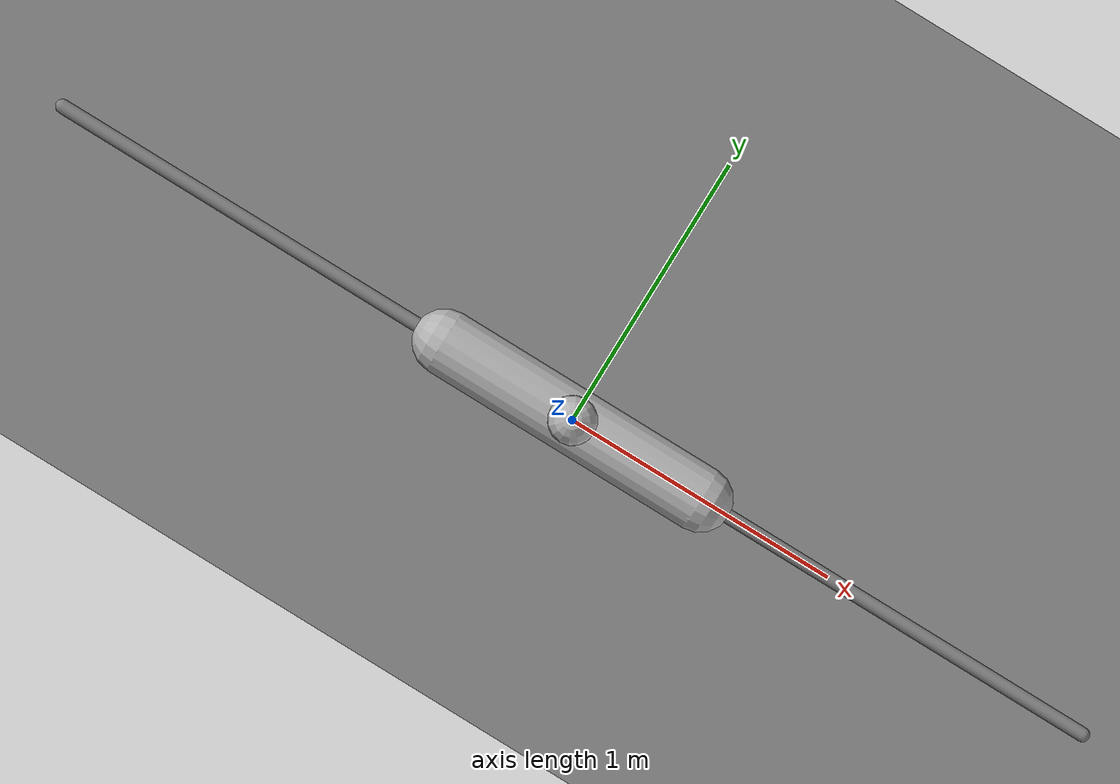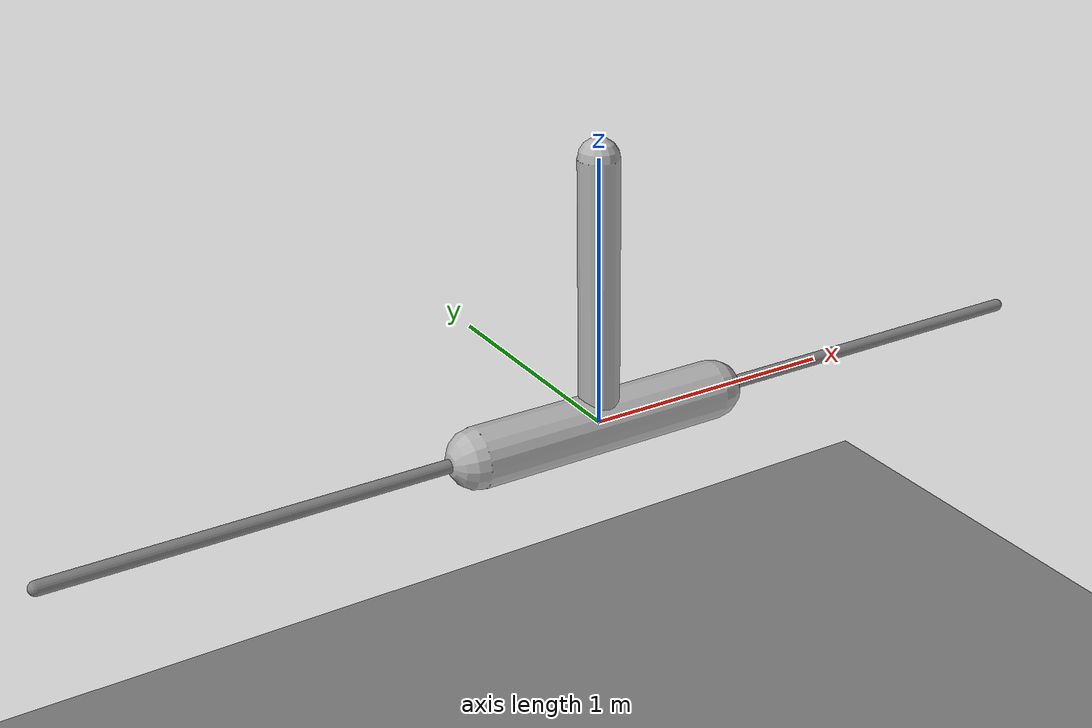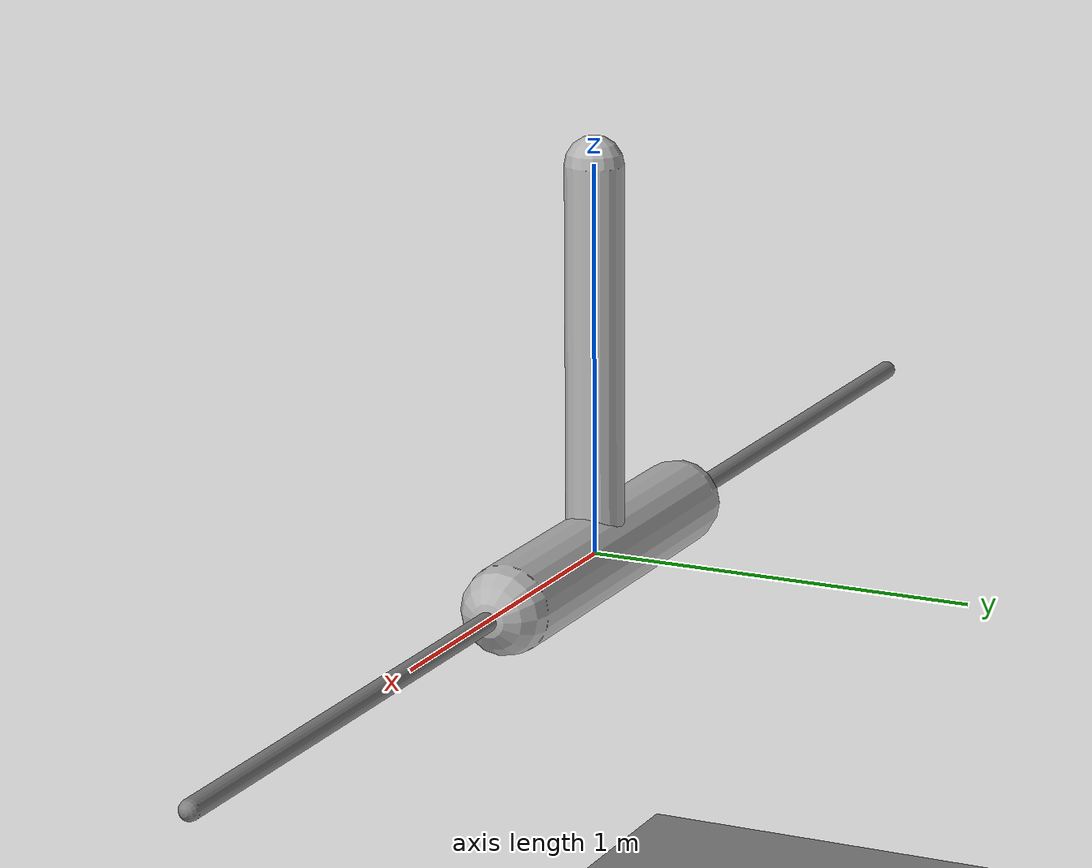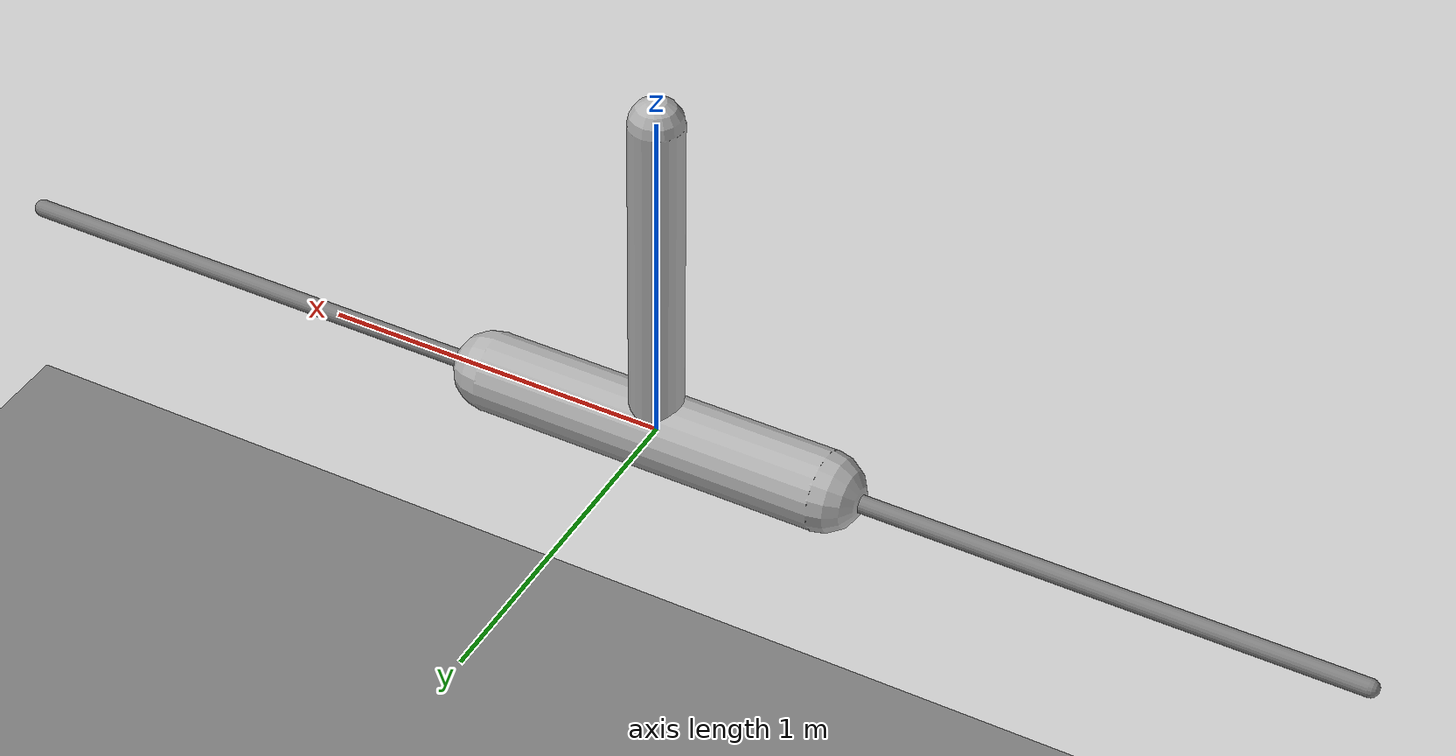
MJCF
<mujoco model='test_cartpole'>
  <compiler inertiafromgeom='true' coordinate='local'/>

  <size nkey="1"/>

  <option timestep='0.1'/>

  <default>
    <joint damping='0.0' solreflimit='.08 1'/>
    <geom density='22.75' contype='0' friction='1 0.1 0.1'/>
  </default>

  <worldbody>
    <camera name='fixed' pos='0 -2.5 0' quat='0.707 0.707 0 0'/>
    <geom name='floor' pos='0 0 -2' size='4 4 4' type='plane' />
    <geom name='rail1' type='capsule' pos='0 0 0' quat='0.707 0 0.707 0'
          size='0.025 2.0' />
    <body name='cart' pos='0 0 0'>
      <camera name='cart' pos='0 -2.5 0' quat='0.707 0.707 0 0' />
      <joint name='slider' type='slide' limited='false' pos='0 0 0'
               axis='1 0 0' range='-1 1' />
      <geom name='cart' type='capsule' pos='0 0 0' fromto='-0.5 0 0 0.5 0 0'
              size='0.1125 1.0' rgba='0.7 0.7 0.7 1' />
      <site name='cart sensor' type='box' pos='0 0 0'
              size='0.2 0.1 0.05' rgba='0.7 0.7 0 0' />
      <body name='pole' pos='0 0 0'>
        <camera name='pole'  pos='0 -2.5 0' quat='0.0 0.0 0 0' />
        <joint name='hinge' type='hinge' pos='0 0 0' axis='0 1 0'/>
        <geom name='cpole' type='capsule' fromto='0 0 0 0 0 1.0'
                size='0.075 1.0' rgba='0.7 0.7 0.7 1' />
        <site type='sphere' size='.01' name='tip' pos='.001 0 .6'/>
      </body>
    </body>
  </worldbody>

  <actuator>
    <motor name='slide' joint='slider' gear='1' ctrllimited='false' ctrlrange='-1000 1000' />
  </actuator>

  <keyframe>
    <key name="hanging_down" qpos="0 1.57"/>
  </keyframe>

</mujoco>
